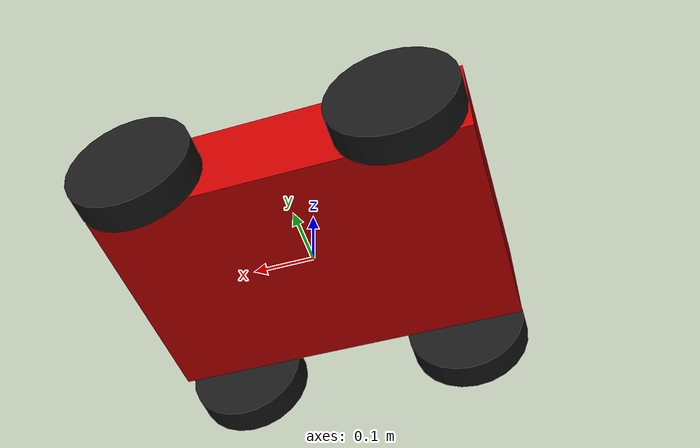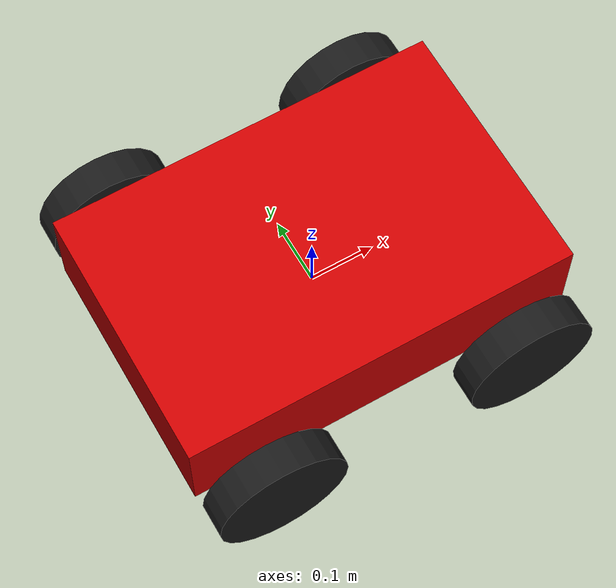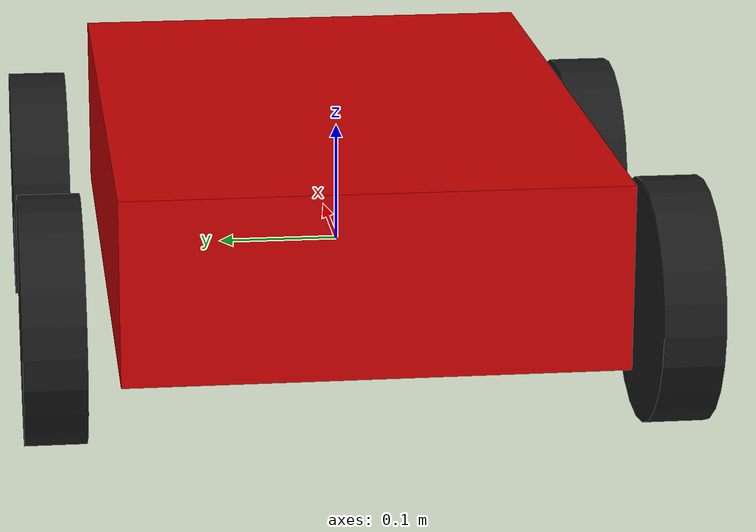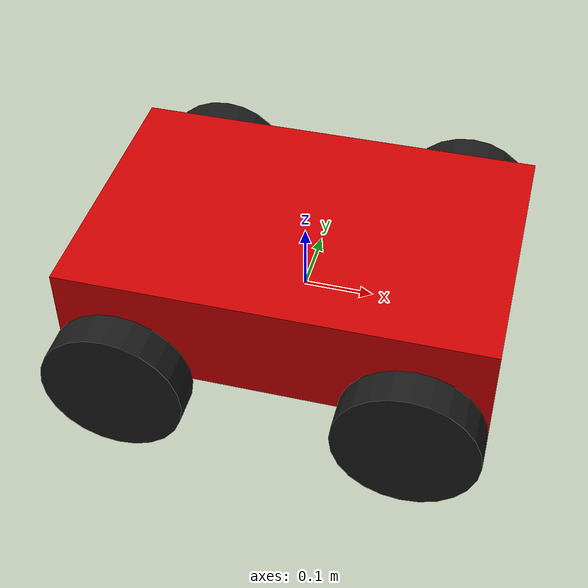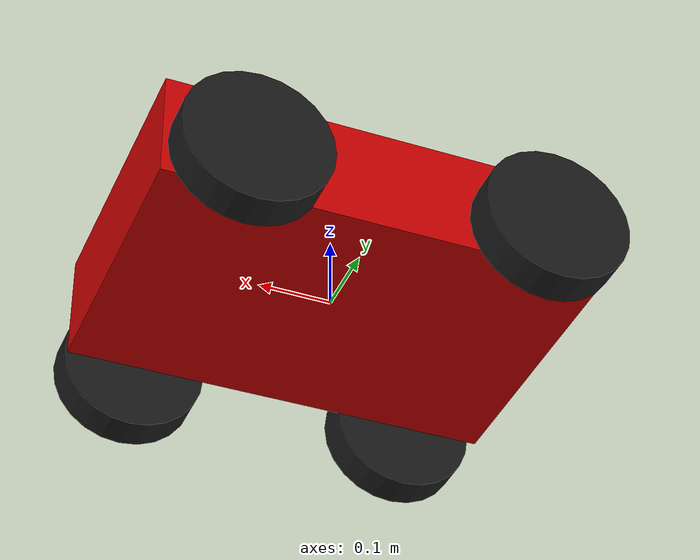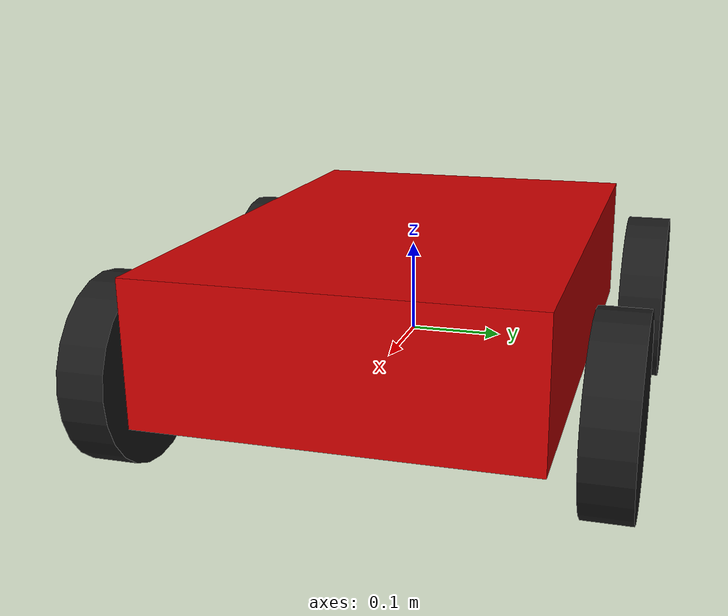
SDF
<?xml version="1.0" ?>
<sdf version="1.7">
  <model name="four_wheeled_robot">

    <link name="base_link">
      <pose>0 0 0 0 0 0</pose>

      <inertial>
        <pose>0 0 0.05 0 0 0</pose>
        <mass>15.0</mass>
        <inertia>
          <ixx>0.228</ixx>
          <ixy>0.0</ixy>
          <ixz>0.0</ixz>
          <iyy>0.478</iyy>
          <iyz>0.0</iyz>
          <izz>0.65</izz>
        </inertia>
      </inertial>

      <collision name="base_link_collision">
        <pose>0 0 0.05 0 0 0</pose>
        <geometry>
          <box>
            <size>0.6 0.4 0.15</size>
          </box>
        </geometry>
      </collision>

      <visual name="base_link_visual">
        <pose>0 0 0.05 0 0 0</pose>
        <geometry>
          <box>
            <size>0.6 0.4 0.15</size>
          </box>
        </geometry>
        <material>
          <ambient>0.8 0.0 0.0 1.0</ambient>
          <diffuse>0.8 0.0 0.0 1.0</diffuse>
          <specular>0.1 0.1 0.1 1.0</specular>
        </material>
      </visual>

      <sensor name="front_camera" type="camera">
        <pose>0.3 0 0.15 0 0 0</pose> <always_on>true</always_on>
        <update_rate>30.0</update_rate>
        <visualize>true</visualize> <topic>camera/image_raw</topic>
        <camera>
          <horizontal_fov>1.396263</horizontal_fov> <image>
            <width>640</width>
            <height>480</height>
            <format>R8G8B8</format>
          </image>
          <clip>
            <near>0.02</near>
            <far>300</far>
          </clip>
        </camera>
      </sensor>

      <sensor name="downward_camera" type="camera">
        <pose>0.2 0 0.01 0 1.5708 0</pose>
        <always_on>true</always_on>
        <update_rate>30.0</update_rate>
        <visualize>true</visualize>
        <topic>down_camera/image_raw</topic>
        <camera>
          <horizontal_fov>1.047</horizontal_fov> <image>
            <width>640</width>
            <height>480</height>
            <format>R8G8B8</format>
          </image>
          <clip>
            <near>0.01</near> <far>10</far>
          </clip>
        </camera>
      </sensor>
    </link>

    <link name="front_left_wheel">
      <pose>0.2 0.25 0 -1.5708 0 0</pose> <inertial>
        <mass>2.0</mass>
        <inertia>
          <ixx>0.0054</ixx>
          <ixy>0.0</ixy>
          <ixz>0.0</ixz>
          <iyy>0.0054</iyy>
          <iyz>0.0</iyz>
          <izz>0.01</izz>
        </inertia>
      </inertial>
      <collision name="front_left_wheel_collision">
        <geometry>
          <cylinder>
            <radius>0.1</radius>
            <length>0.05</length>
          </cylinder>
        </geometry>
      </collision>
      <visual name="front_left_wheel_visual">
        <geometry>
          <cylinder>
            <radius>0.1</radius>
            <length>0.05</length>
          </cylinder>
        </geometry>
        <material>
          <ambient>0.1 0.1 0.1 1.0</ambient>
          <diffuse>0.1 0.1 0.1 1.0</diffuse>
          <specular>0.1 0.1 0.1 1.0</specular>
        </material>
      </visual>
    </link>

    <joint name="front_left_wheel_joint" type="revolute">
      <parent>base_link</parent>
      <child>front_left_wheel</child>
      <axis>
        <xyz>0 0 1</xyz> <limit>
          <lower>-1e16</lower>
          <upper>1e16</upper>
        </limit>
      </axis>
    </joint>

    <link name="rear_left_wheel">
      <pose>-0.2 0.25 0 -1.5708 0 0</pose>
      <inertial>
        <mass>2.0</mass>
        <inertia>
          <ixx>0.0054</ixx>
          <ixy>0.0</ixy>
          <ixz>0.0</ixz>
          <iyy>0.0054</iyy>
          <iyz>0.0</iyz>
          <izz>0.01</izz>
        </inertia>
      </inertial>
      <collision name="rear_left_wheel_collision">
        <geometry>
          <cylinder>
            <radius>0.1</radius>
            <length>0.05</length>
          </cylinder>
        </geometry>
      </collision>
      <visual name="rear_left_wheel_visual">
        <geometry>
          <cylinder>
            <radius>0.1</radius>
            <length>0.05</length>
          </cylinder>
        </geometry>
        <material>
          <ambient>0.1 0.1 0.1 1.0</ambient>
          <diffuse>0.1 0.1 0.1 1.0</diffuse>
          <specular>0.1 0.1 0.1 1.0</specular>
        </material>
      </visual>
    </link>

    <joint name="rear_left_wheel_joint" type="revolute">
      <parent>base_link</parent>
      <child>rear_left_wheel</child>
      <axis>
        <xyz>0 0 1</xyz>
        <limit>
          <lower>-1e16</lower>
          <upper>1e16</upper>
        </limit>
      </axis>
    </joint>

    <link name="front_right_wheel">
      <pose>0.2 -0.25 0 -1.5708 0 0</pose>
      <inertial>
        <mass>2.0</mass>
        <inertia>
          <ixx>0.0054</ixx>
          <ixy>0.0</ixy>
          <ixz>0.0</ixz>
          <iyy>0.0054</iyy>
          <iyz>0.0</iyz>
          <izz>0.01</izz>
        </inertia>
      </inertial>
      <collision name="front_right_wheel_collision">
        <geometry>
          <cylinder>
            <radius>0.1</radius>
            <length>0.05</length>
          </cylinder>
        </geometry>
      </collision>
      <visual name="front_right_wheel_visual">
        <geometry>
          <cylinder>
            <radius>0.1</radius>
            <length>0.05</length>
          </cylinder>
        </geometry>
        <material>
          <ambient>0.1 0.1 0.1 1.0</ambient>
          <diffuse>0.1 0.1 0.1 1.0</diffuse>
          <specular>0.1 0.1 0.1 1.0</specular>
        </material>
      </visual>
    </link>

    <joint name="front_right_wheel_joint" type="revolute">
      <parent>base_link</parent>
      <child>front_right_wheel</child>
      <axis>
        <xyz>0 0 1</xyz>
        <limit>
          <lower>-1e16</lower>
          <upper>1e16</upper>
        </limit>
      </axis>
    </joint>

    <link name="rear_right_wheel">
      <pose>-0.2 -0.25 0 -1.5708 0 0</pose>
      <inertial>
        <mass>2.0</mass>
        <inertia>
          <ixx>0.0054</ixx>
          <ixy>0.0</ixy>
          <ixz>0.0</ixz>
          <iyy>0.0054</iyy>
          <iyz>0.0</iyz>
          <izz>0.01</izz>
        </inertia>
      </inertial>
      <collision name="rear_right_wheel_collision">
        <geometry>
          <cylinder>
            <radius>0.1</radius>
            <length>0.05</length>
          </cylinder>
        </geometry>
      </collision>
      <visual name="rear_right_wheel_visual">
        <geometry>
          <cylinder>
            <radius>0.1</radius>
            <length>0.05</length>
          </cylinder>
        </geometry>
        <material>
          <ambient>0.1 0.1 0.1 1.0</ambient>
          <diffuse>0.1 0.1 0.1 1.0</diffuse>
          <specular>0.1 0.1 0.1 1.0</specular>
        </material>
      </visual>
    </link>

    <joint name="rear_right_wheel_joint" type="revolute">
      <parent>base_link</parent>
      <child>rear_right_wheel</child>
      <axis>
        <xyz>0 0 1</xyz>
        <limit>
          <lower>-1e16</lower>
          <upper>1e16</upper>
        </limit>
      </axis>
    </joint>

    <plugin
      filename="gz-sim-diff-drive-system"
      name="gz::sim::systems::DiffDrive">

      <left_joint>front_left_wheel_joint</left_joint>
      <left_joint>rear_left_wheel_joint</left_joint>
      <right_joint>front_right_wheel_joint</right_joint>
      <right_joint>rear_right_wheel_joint</right_joint>

      <wheel_separation>0.5</wheel_separation>
      <wheel_radius>0.1</wheel_radius>

      <max_linear_acceleration>1.0</max_linear_acceleration>

      <topic>cmd_vel</topic>
      <odom_topic>odom</odom_topic>
      <tf_topic>tf</tf_topic>
      <frame_id>odom</frame_id>
      <child_frame_id>base_link</child_frame_id>
    </plugin>

    <plugin
      filename="gz-sim-sensors-system"
      name="gz::sim::systems::Sensors">
    </plugin>
  </model>
</sdf>
